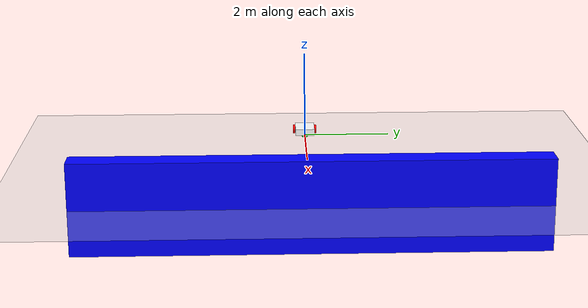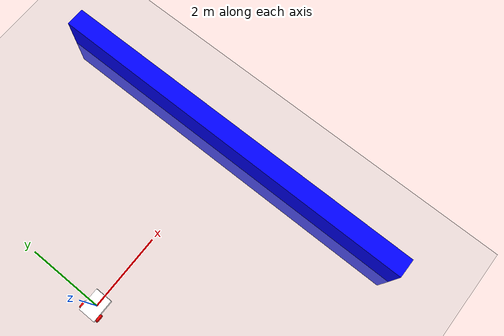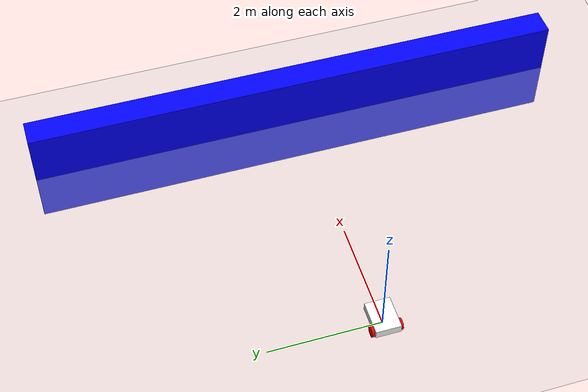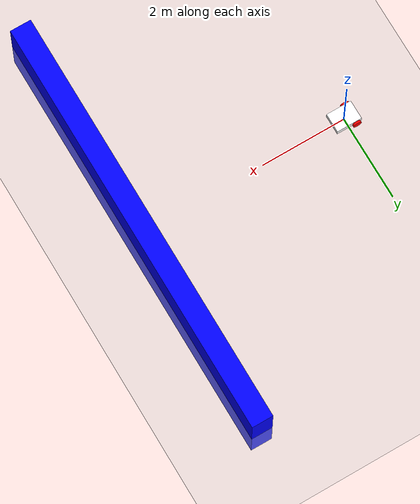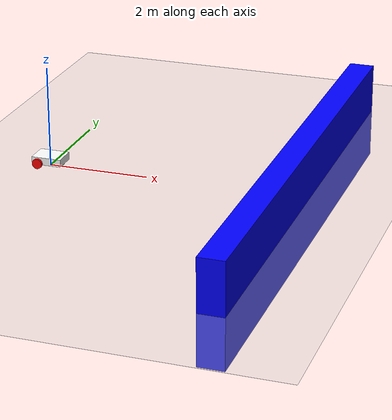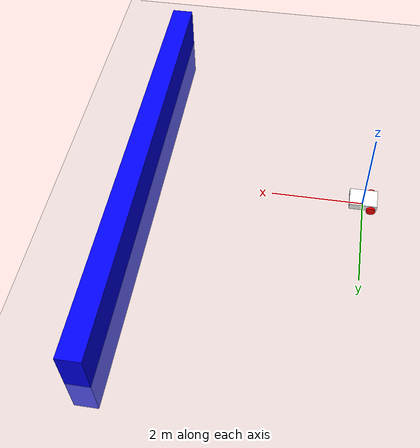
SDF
<?xml version="1.0" ?>
<sdf version="1.10">
    <world name="car_world">
        <physics name="1ms" type="ignored">
            <max_step_size>0.001</max_step_size>
            <real_time_factor>1.0</real_time_factor>
        </physics>
        <plugin
            filename="gz-sim-physics-system"
            name="gz::sim::systems::Physics">
        </plugin>
        <plugin
            filename="gz-sim-user-commands-system"
            name="gz::sim::systems::UserCommands">
        </plugin>
        <plugin
            filename="gz-sim-scene-broadcaster-system"
            name="gz::sim::systems::SceneBroadcaster">
        </plugin>

        <plugin filename="gz-sim-imu-system"
                name="gz::sim::systems::Imu">
        </plugin>
         <plugin
            filename="gz-sim-contact-system"
            name="gz::sim::systems::Contact">
        </plugin>
        <plugin
            filename="gz-sim-sensors-system"
            name="gz::sim::systems::Sensors">
            <render_engine>ogre2</render_engine>
        </plugin>

        <light type="directional" name="sun">
            <cast_shadows>true</cast_shadows>
            <pose>0 0 10 0 0 0</pose>
            <diffuse>0.8 0.8 0.8 1</diffuse>
            <specular>0.2 0.2 0.2 1</specular>
            <attenuation>
                <range>1000</range>
                <constant>0.9</constant>
                <linear>0.01</linear>
                <quadratic>0.001</quadratic>
            </attenuation>
            <direction>-0.5 0.1 -0.9</direction>
        </light>

        <model name="ground_plane">
            <static>true</static>
            <link name="link">
                <collision name="collision">
                <geometry>
                    <plane>
                    <normal>0 0 1</normal>
                    </plane>
                </geometry>
                </collision>
                <visual name="visual">
                <geometry>
                    <plane>
                    <normal>0 0 1</normal>
                    <size>100 100</size>
                    </plane>
                </geometry>
                <material>
                    <ambient>0.8 0.8 0.8 1</ambient>
                    <diffuse>0.8 0.8 0.8 1</diffuse>
                    <specular>0.8 0.8 0.8 1</specular>
                </material>
                </visual>
            </link>
        </model>

        <model name='vehicle_blue' canonical_link='chassis'>
            <pose relative_to='world'>0 0 0 0 0 0</pose>

            <link name='chassis'>
                <pose relative_to='__model__'>0.0 0 0.15 0 0 0</pose>
                <inertial> <!--inertial properties of the link mass, inertia matix-->
                    <mass>1.14395</mass>
                    <inertia>
                        <ixx>0.095329</ixx>
                        <ixy>0</ixy>
                        <ixz>0</ixz>
                        <iyy>0.381317</iyy>
                        <iyz>0</iyz>
                        <izz>0.476646</izz>
                    </inertia>
                </inertial>
                <visual name='visual'>
                    <geometry>
                        <box>
                            <size>0.6 0.45 0.15</size>
                        </box>
                    </geometry>
                    <!--let's add color to our link-->
                    <material>
                        <ambient>1 1 1 1</ambient>
                        <diffuse>1 1 1 1</diffuse>
                        <specular>1 1 1 1</specular>
                    </material>
                </visual>
                <collision name='collision'>
                    <geometry>
                        <box>
                            <size>0.6 0.45 0.15</size>
                        </box>
                    </geometry>
                </collision>
                <!-- imu_sensor -->
                <sensor name="imu_sensor" type="imu">
                    <always_on>1</always_on>
                    <update_rate>1</update_rate>
                    <visualize>true</visualize>
                    <topic>imu</topic>
                </sensor>
                <!-- lidar_sensor -->
                <sensor name='gpu_lidar' type='gpu_lidar'>"
                    <pose relative_to='lidar_frame'>0 0 0 0 0 0</pose>
                    <topic>lidar</topic>
                    <update_rate>10</update_rate>
                    <ray>
                        <scan>
                            <horizontal>
                                <samples>640</samples>
                                <resolution>1</resolution>
                                <min_angle>-1.396263</min_angle>
                                <max_angle>1.396263</max_angle>
                            </horizontal>
                            <vertical>
                                <samples>1</samples>
                                <resolution>0.01</resolution>
                                <min_angle>0</min_angle>
                                <max_angle>0</max_angle>
                            </vertical>
                        </scan>
                        <range>
                            <min>0.08</min>
                            <max>10.0</max>
                            <resolution>0.01</resolution>
                        </range>
                    </ray>
                    <always_on>1</always_on>
                    <visualize>true</visualize>
                </sensor>

            </link>
            <!-- left_wheel -->
            <link name='left_wheel'>
                <pose relative_to="chassis">-0.175 0.25 -0.05 -1.5707 0 0</pose>
                <inertial>
                    <mass>1</mass>
                    <inertia>
                        <ixx>0.043333</ixx>
                        <ixy>0</ixy>
                        <ixz>0</ixz>
                        <iyy>0.043333</iyy>
                        <iyz>0</iyz>
                        <izz>0.08</izz>
                    </inertia>
                </inertial>
                    <visual name='visual'>
                    <geometry>
                        <cylinder>
                            <radius>0.1</radius>
                            <length>0.05</length>
                        </cylinder>
                    </geometry>
                    <material>
                        <ambient>1.0 0.0 0.0 1</ambient>
                        <diffuse>1.0 0.0 0.0 1</diffuse>
                        <specular>1.0 0.0 0.0 1</specular>
                    </material>
                </visual>
                <collision name='collision'>
                    <geometry>
                        <cylinder>
                            <radius>0.1</radius>
                            <length>0.05</length>
                        </cylinder>
                    </geometry>
                </collision>
            </link>
            <!--The same as left wheel but with different position-->
            <link name='right_wheel'>
                <pose relative_to="chassis">-0.175 -0.25 -0.05 -1.5707 0 0</pose> <!--angles are in radian-->
                <inertial>
                    <mass>1</mass>
                    <inertia>
                        <ixx>0.043333</ixx>
                        <ixy>0</ixy>
                        <ixz>0</ixz>
                        <iyy>0.043333</iyy>
                        <iyz>0</iyz>
                        <izz>0.08</izz>
                    </inertia>
                </inertial>
                <visual name='visual'>
                    <geometry>
                        <cylinder>
                            <radius>0.1</radius>
                            <length>0.05</length>
                        </cylinder>
                    </geometry>
                    <material>
                        <ambient>1.0 0.0 0.0 1</ambient>
                        <diffuse>1.0 0.0 0.0 1</diffuse>
                        <specular>1.0 0.0 0.0 1</specular>
                    </material>
                </visual>
                <collision name='collision'>
                    <geometry>
                        <cylinder>
                            <radius>0.1</radius>
                            <length>0.05</length>
                        </cylinder>
                    </geometry>
                </collision>
            </link>
            <frame name="lidar_frame" attached_to='chassis'>
                <pose>0.2 0 0.2 0 0 0</pose>
            </frame>
            <frame name="caster_frame" attached_to='chassis'>
                <pose>0.2 0 -0.05 0 0 0</pose>
            </frame>
            <!--caster wheel-->
            <link name='caster'>
                <pose relative_to='caster_frame'/>
                <inertial>
                    <mass>1</mass>
                    <inertia>
                        <ixx>0.016</ixx>
                        <ixy>0</ixy>
                        <ixz>0</ixz>
                        <iyy>0.016</iyy>
                        <iyz>0</iyz>
                        <izz>0.016</izz>
                    </inertia>
                </inertial>
                <visual name='visual'>
                    <geometry>
                        <sphere>
                            <radius>0.1</radius>
                        </sphere>
                    </geometry>
                    <material>
                        <ambient>0.0 1 0.0 1</ambient>
                        <diffuse>0.0 1 0.0 1</diffuse>
                        <specular>0.0 1 0.0 1</specular>
                    </material>
                </visual>
                <collision name='collision'>
                    <geometry>
                        <sphere>
                            <radius>0.1</radius>
                        </sphere>
                    </geometry>
                </collision>
            </link>
            <joint name='left_wheel_joint' type='revolute'>
                <pose relative_to='left_wheel'/>
                <parent>chassis</parent>
                <child>left_wheel</child>
                <axis>
                    <xyz expressed_in='__model__'>0 1 0</xyz> <!--can be defined as any frame or even arbitrary frames-->
                    <limit>
                        <lower>-1.79769e+308</lower>    <!--negative infinity-->
                        <upper>1.79769e+308</upper>     <!--positive infinity-->
                    </limit>
                </axis>
            </joint>
            <joint name='right_wheel_joint' type='revolute'>
                <pose relative_to='right_wheel'/>
                <parent>chassis</parent>
                <child>right_wheel</child>
                <axis>
                    <xyz expressed_in='__model__'>0 1 0</xyz>
                    <limit>
                        <lower>-1.79769e+308</lower>    <!--negative infinity-->
                        <upper>1.79769e+308</upper>     <!--positive infinity-->
                    </limit>
                </axis>
            </joint>

            <joint name='caster_wheel' type='ball'>
                <parent>chassis</parent>
                <child>caster</child>
            </joint>

            <plugin
                filename="gz-sim-diff-drive-system"
                name="gz::sim::systems::DiffDrive">
                <left_joint>left_wheel_joint</left_joint>
                <right_joint>right_wheel_joint</right_joint>
                <wheel_separation>1.2</wheel_separation>
                <wheel_radius>0.4</wheel_radius>
                <odom_publish_frequency>1</odom_publish_frequency>
                <topic>cmd_vel</topic>
            </plugin>

        </model>
        <!--wall-->
        <model name='wall'>
            <static>true</static>
            <pose>5 0 0 0 0 0</pose><!--pose relative to the world-->
            <link name='box'>
                <pose/>
                <inertial> <!--inertial properties of the link mass, inertia matix-->
                    <mass>1.14395</mass>
                    <inertia>
                        <ixx>9.532917</ixx>
                        <ixy>0</ixy>
                        <ixz>0</ixz>
                        <iyy>0.023832</iyy>
                        <iyz>0</iyz>
                        <izz>9.556749</izz>
                    </inertia>
                </inertial>
                <visual name='visual'>
                    <geometry>
                        <box>
                            <size>0.5 10.0 2.0</size>
                        </box>
                    </geometry>
                    <!--let's add color to our link-->
                    <material>
                        <ambient>0.0 0.0 1.0 1</ambient>
                        <diffuse>0.0 0.0 1.0 1</diffuse>
                        <specular>0.0 0.0 1.0 1</specular>
                    </material>
                </visual>
                <collision name='collision'> <!--todo: describe why we need the collision-->
                    <geometry>
                        <box>
                            <size>0.5 10.0 2.0</size>
                        </box>
                    </geometry>
                </collision>
                <sensor name='sensor_contact' type='contact'>
                    <contact>
                        <collision>collision</collision>
                    </contact>
                </sensor>
            </link>
            <plugin filename="gz-sim-touchplugin-system"
                    name="gz::sim::systems::TouchPlugin">
                <target>vehicle_blue</target>
                <namespace>wall</namespace>
                <time>0.001</time>
                <enabled>true</enabled>
            </plugin>
        </model>

        <!-- Moving Forward-->
        <plugin filename="gz-sim-triggered-publisher-system"
                name="gz::sim::systems::TriggeredPublisher">
            <input type="gz.msgs.Int32" topic="/keyboard/keypress">
                <match field="data">16777235</match>
            </input>
            <output type="gz.msgs.Twist" topic="/cmd_vel">
                linear: {x: 0.5}, angular: {z: 0.0}
            </output>
        </plugin>
        <!-- Moving Backward-->
        <plugin filename="gz-sim-triggered-publisher-system"
                name="gz::sim::systems::TriggeredPublisher">
            <input type="gz.msgs.Int32" topic="/keyboard/keypress">
                <match field="data">16777237</match>
            </input>
            <output type="gz.msgs.Twist" topic="/cmd_vel">
                linear: {x: -0.5}, angular: {z: 0.0}
            </output>
        </plugin>
        <!-- Moving Right-->
        <plugin filename="gz-sim-triggered-publisher-system"
                name="gz::sim::systems::TriggeredPublisher">
            <input type="gz.msgs.Int32" topic="/keyboard/keypress">
                <match field="data">16777236</match>
            </input>
            <output type="gz.msgs.Twist" topic="/cmd_vel">
                linear: {x: 0.0}, angular: {z: -0.5}
            </output>
        </plugin>
        <!-- Moving Left-->
        <plugin filename="gz-sim-triggered-publisher-system"
                name="gz::sim::systems::TriggeredPublisher">
            <input type="gz.msgs.Int32" topic="/keyboard/keypress">
                <match field="data">16777234</match>
            </input>
            <output type="gz.msgs.Twist" topic="/cmd_vel">
                linear: {x: 0.0}, angular: {z: 0.5}
            </output>
        </plugin>

        <!-- Stop-->
        <plugin filename="gz-sim-triggered-publisher-system"
                name="gz::sim::systems::TriggeredPublisher">
            <input type="gz.msgs.Int32" topic="/keyboard/keypress">
                <match field="data">75</match>
            </input>
            <output type="gz.msgs.Twist" topic="/cmd_vel">
                linear: {x: 0.0}, angular: {z: 0.0}
            </output>
        </plugin>

    </world>
</sdf>
